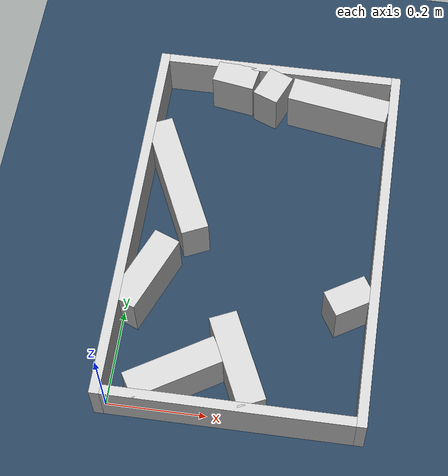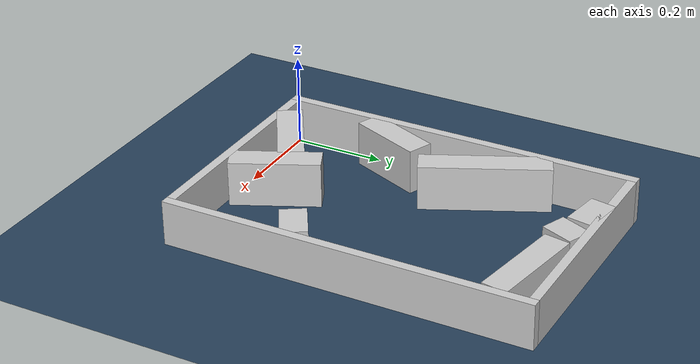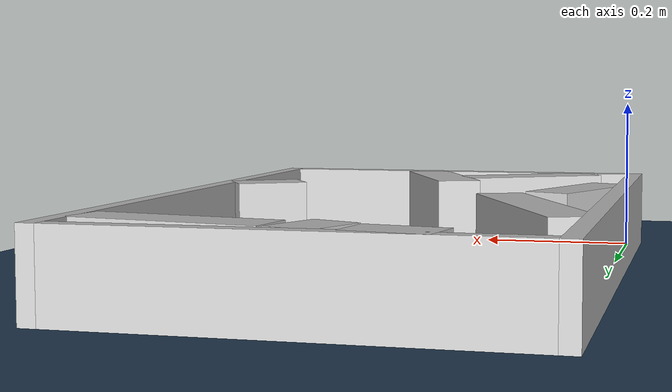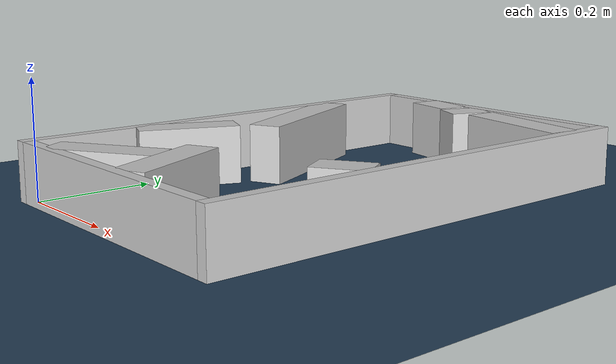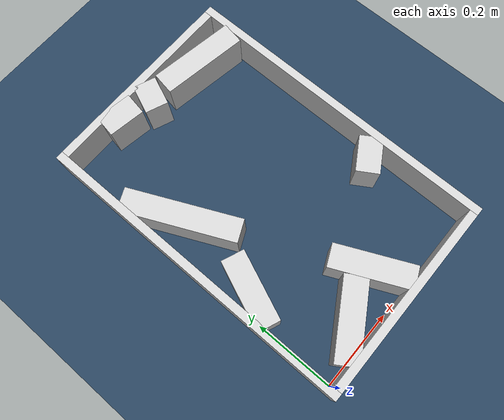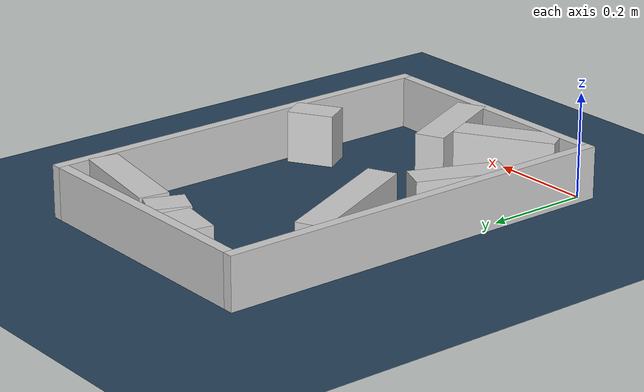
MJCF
<?xml version="1.0" ?>
<mujoco model="generated_real_template">
  <compiler angle="degree"/>
  <option timestep="0.002" integrator="implicitfast" iterations="100" cone="elliptic"/>
  <default>
    <geom density="1"/>
  </default>
  <asset>
    <texture builtin="gradient" height="3072" rgb1="0.3 0.5 0.7" rgb2="0 0 0" type="skybox" width="512"/>
    <texture builtin="checker" height="300" mark="edge" markrgb="0.8 0.8 0.8" name="groundplane" rgb1="0.2 0.3 0.4" rgb2="0.1 0.2 0.3" type="2d" width="300"/>
    <material name="groundplane" reflectance="0.2" texrepeat="5 5" texture="groundplane" texuniform="true"/>
  </asset>
  <worldbody>
    <light dir="0 0 -1" directional="true" pos="0 0 1.5"/>
    <geom name="floor" type="plane" condim="4" friction="0.5 0.005 0.001" material="groundplane" size="0 0 0.05"/>
    <body name="walls">
      <geom name="wall_boundary_left" type="box" condim="4" friction="1.0 0.005 0.0001" rgba="0.8 0.8 0.8 1" pos="-0.010000 0.387500 0.050000" euler="0 0 0.000000" size="0.010000 0.407500 0.050000"/>
      <geom name="wall_boundary_right" type="box" condim="4" friction="1.0 0.005 0.0001" rgba="0.8 0.8 0.8 1" pos="0.500000 0.387500 0.050000" euler="0 0 0.000000" size="0.010000 0.407500 0.050000"/>
      <geom name="wall_boundary_bottom" type="box" condim="4" friction="1.0 0.005 0.0001" rgba="0.8 0.8 0.8 1" pos="0.245000 -0.010000 0.050000" euler="0 0 0.000000" size="0.245000 0.010000 0.050000"/>
      <geom name="wall_boundary_top" type="box" condim="4" friction="1.0 0.005 0.0001" rgba="0.8 0.8 0.8 1" pos="0.245000 0.785000 0.050000" euler="0 0 0.000000" size="0.245000 0.010000 0.050000"/>
      <geom name="wall_inner_1_1" type="box" condim="4" friction="1.0 0.005 0.0001" rgba="0.8 0.8 0.8 1" pos="0.065065 0.485718 0.050000" euler="0 0 -65.107026" size="0.140672 0.028500 0.050000"/>
      <geom name="wall_inner_1_2" type="box" condim="4" friction="1.0 0.005 0.0001" rgba="0.8 0.8 0.8 1" pos="0.249415 0.088444 0.050000" euler="0 0 -65.107026" size="0.097502 0.028500 0.050000"/>
      <geom name="wall_inner_2_1" type="box" condim="4" friction="1.0 0.005 0.0001" rgba="0.8 0.8 0.8 1" pos="0.130791 0.054304 0.050000" euler="0 0 31.511955" size="0.095672 0.028500 0.050000"/>
      <geom name="wall_inner_2_2" type="box" condim="4" friction="1.0 0.005 0.0001" rgba="0.8 0.8 0.8 1" pos="0.451764 0.251088 0.050000" euler="0 0 31.511955" size="0.044850 0.028500 0.050000"/>
      <geom name="wall_inner_3_1" type="box" condim="4" friction="1.0 0.005 0.0001" rgba="0.8 0.8 0.8 1" pos="0.383038 0.720473 0.050000" euler="0 0 170.461630" size="0.108462 0.028500 0.050000"/>
      <geom name="wall_inner_3_2" type="box" condim="4" friction="1.0 0.005 0.0001" rgba="0.8 0.8 0.8 1" pos="0.151837 0.759322 0.050000" euler="0 0 170.461630" size="0.045687 0.028500 0.050000"/>
      <geom name="wall_inner_4_1" type="box" condim="4" friction="1.0 0.005 0.0001" rgba="0.8 0.8 0.8 1" pos="0.038808 0.257781 0.050000" euler="0 0 67.804446" size="0.085817 0.028500 0.050000"/>
      <geom name="wall_inner_4_2" type="box" condim="4" friction="1.0 0.005 0.0001" rgba="0.8 0.8 0.8 1" pos="0.235708 0.740376 0.050000" euler="0 0 67.804446" size="0.037395 0.028500 0.050000"/>
    </body>
  </worldbody>
</mujoco>
